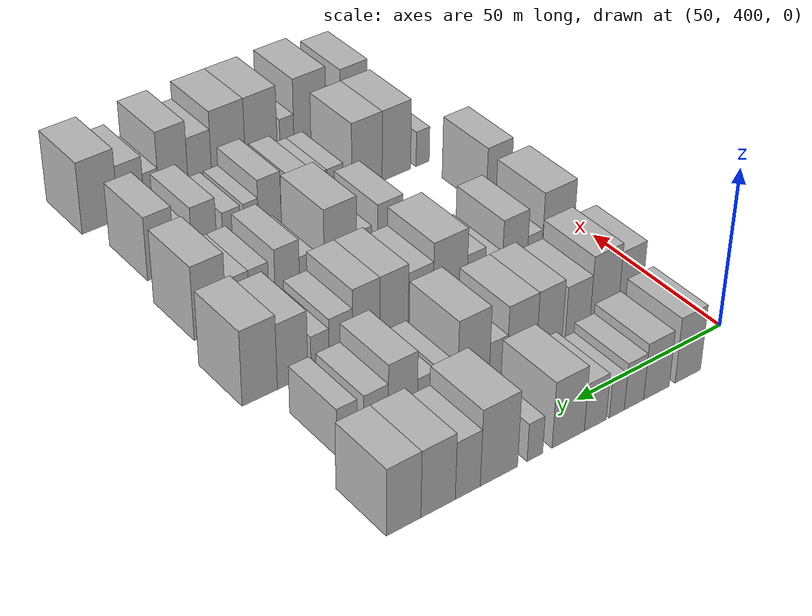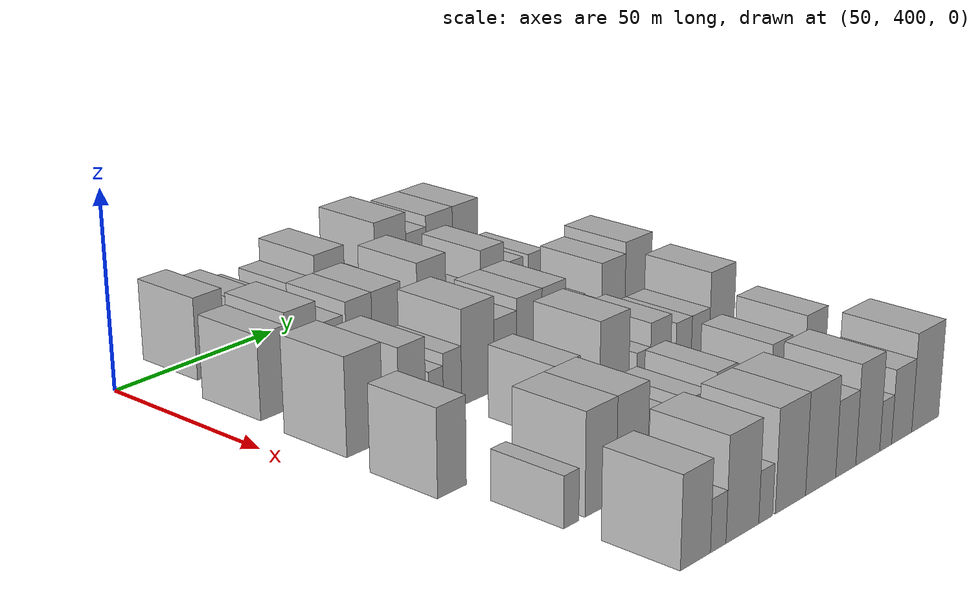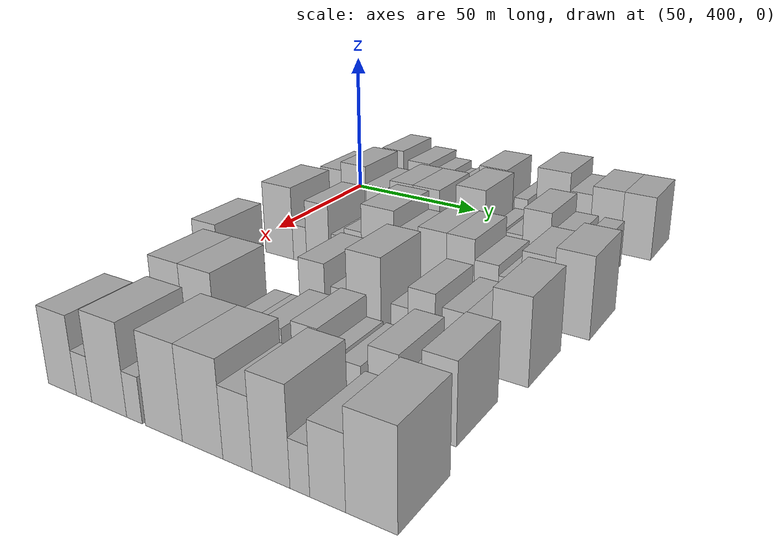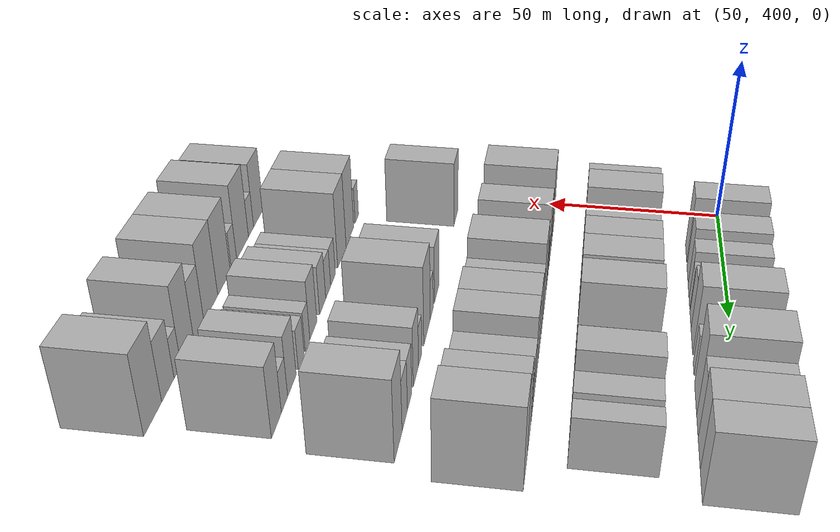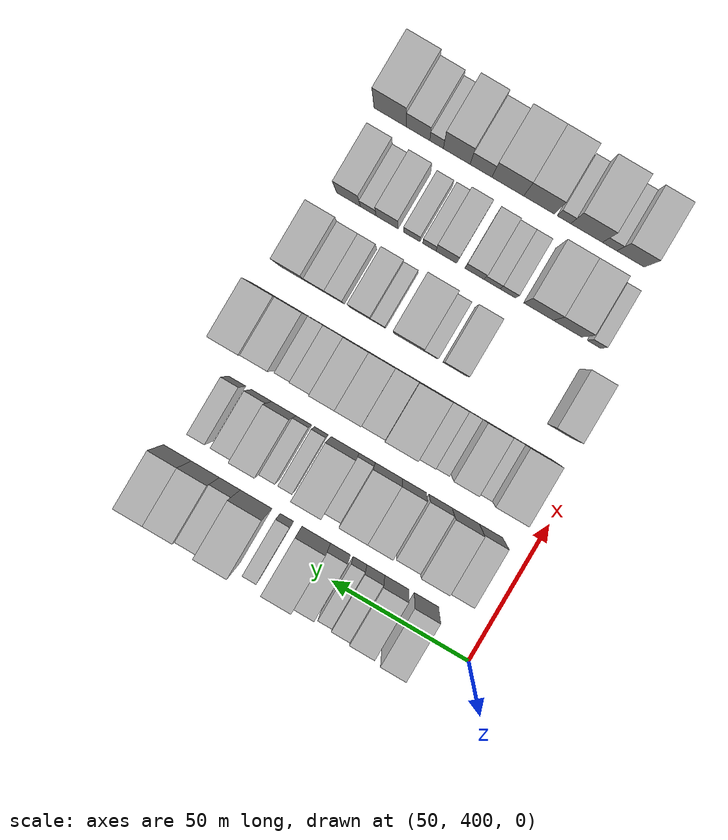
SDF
<sdf version="1.6">
 <world name="default">
  <model name="building_107">
   <static>1</static>
   <pose>50.0000 421.2466 0 0.000000 0.000000 0.000000</pose>
   <link name="link">
    <pose>0 0 10.50 0 0 0</pose>
    <collision name="collision"><geometry><box><size>20.0000 8.8748 21.0000</size></box></geometry></collision>
    <visual name="visual">
     <cast_shadows>0</cast_shadows>
     <geometry><box><size>20.0000 8.8748 21.0000</size></box></geometry>
     <material>
      <script>
       <uri>model://HANNAS_wall/materials/scripts</uri>
       <uri>model://HANNAS_wall/materials/textures</uri>
       <name>vrc/HANNAS_wall</name>
      </script>
     </material>
    </visual>
   </link>
  </model>
  <model name="building_108">
   <static>1</static>
   <pose>50.0000 432.0587 0 0.000000 0.000000 0.000000</pose>
   <link name="link">
    <pose>0 0 9.00 0 0 0</pose>
    <collision name="collision"><geometry><box><size>20.0000 8.7495 18.0000</size></box></geometry></collision>
    <visual name="visual">
     <cast_shadows>0</cast_shadows>
     <geometry><box><size>20.0000 8.7495 18.0000</size></box></geometry>
     <material>
      <script>
       <uri>model://HANNAS_wall/materials/scripts</uri>
       <uri>model://HANNAS_wall/materials/textures</uri>
       <name>vrc/HANNAS_wall</name>
      </script>
     </material>
    </visual>
   </link>
  </model>
  <model name="building_109">
   <static>1</static>
   <pose>50.0000 439.6969 0 0.000000 0.000000 0.000000</pose>
   <link name="link">
    <pose>0 0 7.50 0 0 0</pose>
    <collision name="collision"><geometry><box><size>20.0000 6.5268 15.0000</size></box></geometry></collision>
    <visual name="visual">
     <cast_shadows>0</cast_shadows>
     <geometry><box><size>20.0000 6.5268 15.0000</size></box></geometry>
     <material>
      <script>
       <uri>model://HANNAS_wall/materials/scripts</uri>
       <uri>model://HANNAS_wall/materials/textures</uri>
       <name>vrc/HANNAS_wall</name>
      </script>
     </material>
    </visual>
   </link>
  </model>
  <model name="building_110">
   <static>1</static>
   <pose>50.0000 445.4634 0 0.000000 0.000000 0.000000</pose>
   <link name="link">
    <pose>0 0 6.00 0 0 0</pose>
    <collision name="collision"><geometry><box><size>20.0000 5.0061 12.0000</size></box></geometry></collision>
    <visual name="visual">
     <cast_shadows>0</cast_shadows>
     <geometry><box><size>20.0000 5.0061 12.0000</size></box></geometry>
     <material>
      <script>
       <uri>model://HANNAS_wall/materials/scripts</uri>
       <uri>model://HANNAS_wall/materials/textures</uri>
       <name>vrc/HANNAS_wall</name>
      </script>
     </material>
    </visual>
   </link>
  </model>
  <model name="building_111">
   <static>1</static>
   <pose>50.0000 452.5818 0 0.000000 0.000000 0.000000</pose>
   <link name="link">
    <pose>0 0 7.50 0 0 0</pose>
    <collision name="collision"><geometry><box><size>20.0000 7.2307 15.0000</size></box></geometry></collision>
    <visual name="visual">
     <cast_shadows>0</cast_shadows>
     <geometry><box><size>20.0000 7.2307 15.0000</size></box></geometry>
     <material>
      <script>
       <uri>model://HANNAS_wall/materials/scripts</uri>
       <uri>model://HANNAS_wall/materials/textures</uri>
       <name>vrc/HANNAS_wall</name>
      </script>
     </material>
    </visual>
   </link>
  </model>
  <model name="building_112">
   <static>1</static>
   <pose>50.0000 461.4247 0 0.000000 0.000000 0.000000</pose>
   <link name="link">
    <pose>0 0 10.50 0 0 0</pose>
    <collision name="collision"><geometry><box><size>20.0000 10.4552 21.0000</size></box></geometry></collision>
    <visual name="visual">
     <cast_shadows>0</cast_shadows>
     <geometry><box><size>20.0000 10.4552 21.0000</size></box></geometry>
     <material>
      <script>
       <uri>model://HANNAS_wall/materials/scripts</uri>
       <uri>model://HANNAS_wall/materials/textures</uri>
       <name>vrc/HANNAS_wall</name>
      </script>
     </material>
    </visual>
   </link>
  </model>
  <model name="building_113">
   <static>1</static>
   <pose>50.0000 472.1253 0 0.000000 0.000000 0.000000</pose>
   <link name="link">
    <pose>0 0 6.00 0 0 0</pose>
    <collision name="collision"><geometry><box><size>20.0000 4.9460 12.0000</size></box></geometry></collision>
    <visual name="visual">
     <cast_shadows>0</cast_shadows>
     <geometry><box><size>20.0000 4.9460 12.0000</size></box></geometry>
     <material>
      <script>
       <uri>model://HANNAS_wall/materials/scripts</uri>
       <uri>model://HANNAS_wall/materials/textures</uri>
       <name>vrc/HANNAS_wall</name>
      </script>
     </material>
    </visual>
   </link>
  </model>
  <model name="building_114">
   <static>1</static>
   <pose>50.0000 483.3842 0 0.000000 0.000000 0.000000</pose>
   <link name="link">
    <pose>0 0 12.00 0 0 0</pose>
    <collision name="collision"><geometry><box><size>20.0000 11.5720 24.0000</size></box></geometry></collision>
    <visual name="visual">
     <cast_shadows>0</cast_shadows>
     <geometry><box><size>20.0000 11.5720 24.0000</size></box></geometry>
     <material>
      <script>
       <uri>model://HANNAS_wall/materials/scripts</uri>
       <uri>model://HANNAS_wall/materials/textures</uri>
       <name>vrc/HANNAS_wall</name>
      </script>
     </material>
    </visual>
   </link>
  </model>
  <model name="building_115">
   <static>1</static>
   <pose>50.0000 492.9844 0 0.000000 0.000000 0.000000</pose>
   <link name="link">
    <pose>0 0 9.00 0 0 0</pose>
    <collision name="collision"><geometry><box><size>20.0000 7.6282 18.0000</size></box></geometry></collision>
    <visual name="visual">
     <cast_shadows>0</cast_shadows>
     <geometry><box><size>20.0000 7.6282 18.0000</size></box></geometry>
     <material>
      <script>
       <uri>model://HANNAS_wall/materials/scripts</uri>
       <uri>model://HANNAS_wall/materials/textures</uri>
       <name>vrc/HANNAS_wall</name>
      </script>
     </material>
    </visual>
   </link>
  </model>
  <model name="building_116">
   <static>1</static>
   <pose>50.0000 501.9489 0 0.000000 0.000000 0.000000</pose>
   <link name="link">
    <pose>0 0 10.50 0 0 0</pose>
    <collision name="collision"><geometry><box><size>20.0000 10.3009 21.0000</size></box></geometry></collision>
    <visual name="visual">
     <cast_shadows>0</cast_shadows>
     <geometry><box><size>20.0000 10.3009 21.0000</size></box></geometry>
     <material>
      <script>
       <uri>model://HANNAS_wall/materials/scripts</uri>
       <uri>model://HANNAS_wall/materials/textures</uri>
       <name>vrc/HANNAS_wall</name>
      </script>
     </material>
    </visual>
   </link>
  </model>
  <model name="building_117">
   <static>1</static>
   <pose>50.0000 512.1734 0 0.000000 0.000000 0.000000</pose>
   <link name="link">
    <pose>0 0 10.50 0 0 0</pose>
    <collision name="collision"><geometry><box><size>20.0000 10.1482 21.0000</size></box></geometry></collision>
    <visual name="visual">
     <cast_shadows>0</cast_shadows>
     <geometry><box><size>20.0000 10.1482 21.0000</size></box></geometry>
     <material>
      <script>
       <uri>model://HANNAS_wall/materials/scripts</uri>
       <uri>model://HANNAS_wall/materials/textures</uri>
       <name>vrc/HANNAS_wall</name>
      </script>
     </material>
    </visual>
   </link>
  </model>
  <model name="building_219">
   <static>1</static>
   <pose>79.0000 414.7641 0 0.000000 0.000000 0.000000</pose>
   <link name="link">
    <pose>0 0 10.50 0 0 0</pose>
    <collision name="collision"><geometry><box><size>20.0000 8.4899 21.0000</size></box></geometry></collision>
    <visual name="visual">
     <cast_shadows>0</cast_shadows>
     <geometry><box><size>20.0000 8.4899 21.0000</size></box></geometry>
     <material>
      <script>
       <uri>model://HANNAS_wall/materials/scripts</uri>
       <uri>model://HANNAS_wall/materials/textures</uri>
       <name>vrc/HANNAS_wall</name>
      </script>
     </material>
    </visual>
   </link>
  </model>
  <model name="building_220">
   <static>1</static>
   <pose>79.0000 423.9705 0 0.000000 0.000000 0.000000</pose>
   <link name="link">
    <pose>0 0 12.00 0 0 0</pose>
    <collision name="collision"><geometry><box><size>20.0000 9.9229 24.0000</size></box></geometry></collision>
    <visual name="visual">
     <cast_shadows>0</cast_shadows>
     <geometry><box><size>20.0000 9.9229 24.0000</size></box></geometry>
     <material>
      <script>
       <uri>model://HANNAS_wall/materials/scripts</uri>
       <uri>model://HANNAS_wall/materials/textures</uri>
       <name>vrc/HANNAS_wall</name>
      </script>
     </material>
    </visual>
   </link>
  </model>
  <model name="building_221">
   <static>1</static>
   <pose>79.0000 433.1678 0 0.000000 0.000000 0.000000</pose>
   <link name="link">
    <pose>0 0 9.00 0 0 0</pose>
    <collision name="collision"><geometry><box><size>20.0000 8.4718 18.0000</size></box></geometry></collision>
    <visual name="visual">
     <cast_shadows>0</cast_shadows>
     <geometry><box><size>20.0000 8.4718 18.0000</size></box></geometry>
     <material>
      <script>
       <uri>model://HANNAS_wall/materials/scripts</uri>
       <uri>model://HANNAS_wall/materials/textures</uri>
       <name>vrc/HANNAS_wall</name>
      </script>
     </material>
    </visual>
   </link>
  </model>
  <model name="building_222">
   <static>1</static>
   <pose>79.0000 442.7608 0 0.000000 0.000000 0.000000</pose>
   <link name="link">
    <pose>0 0 10.50 0 0 0</pose>
    <collision name="collision"><geometry><box><size>20.0000 8.7142 21.0000</size></box></geometry></collision>
    <visual name="visual">
     <cast_shadows>0</cast_shadows>
     <geometry><box><size>20.0000 8.7142 21.0000</size></box></geometry>
     <material>
      <script>
       <uri>model://HANNAS_wall/materials/scripts</uri>
       <uri>model://HANNAS_wall/materials/textures</uri>
       <name>vrc/HANNAS_wall</name>
      </script>
     </material>
    </visual>
   </link>
  </model>
  <model name="building_223">
   <static>1</static>
   <pose>79.0000 452.0657 0 0.000000 0.000000 0.000000</pose>
   <link name="link">
    <pose>0 0 10.50 0 0 0</pose>
    <collision name="collision"><geometry><box><size>20.0000 9.8955 21.0000</size></box></geometry></collision>
    <visual name="visual">
     <cast_shadows>0</cast_shadows>
     <geometry><box><size>20.0000 9.8955 21.0000</size></box></geometry>
     <material>
      <script>
       <uri>model://HANNAS_wall/materials/scripts</uri>
       <uri>model://HANNAS_wall/materials/textures</uri>
       <name>vrc/HANNAS_wall</name>
      </script>
     </material>
    </visual>
   </link>
  </model>
  <model name="building_224">
   <static>1</static>
   <pose>79.0000 459.9081 0 0.000000 0.000000 0.000000</pose>
   <link name="link">
    <pose>0 0 6.00 0 0 0</pose>
    <collision name="collision"><geometry><box><size>20.0000 5.7894 12.0000</size></box></geometry></collision>
    <visual name="visual">
     <cast_shadows>0</cast_shadows>
     <geometry><box><size>20.0000 5.7894 12.0000</size></box></geometry>
     <material>
      <script>
       <uri>model://HANNAS_wall/materials/scripts</uri>
       <uri>model://HANNAS_wall/materials/textures</uri>
       <name>vrc/HANNAS_wall</name>
      </script>
     </material>
    </visual>
   </link>
  </model>
  <model name="building_225">
   <static>1</static>
   <pose>79.0000 467.9685 0 0.000000 0.000000 0.000000</pose>
   <link name="link">
    <pose>0 0 12.00 0 0 0</pose>
    <collision name="collision"><geometry><box><size>20.0000 10.3315 24.0000</size></box></geometry></collision>
    <visual name="visual">
     <cast_shadows>0</cast_shadows>
     <geometry><box><size>20.0000 10.3315 24.0000</size></box></geometry>
     <material>
      <script>
       <uri>model://HANNAS_wall/materials/scripts</uri>
       <uri>model://HANNAS_wall/materials/textures</uri>
       <name>vrc/HANNAS_wall</name>
      </script>
     </material>
    </visual>
   </link>
  </model>
  <model name="building_226">
   <static>1</static>
   <pose>79.0000 476.6494 0 0.000000 0.000000 0.000000</pose>
   <link name="link">
    <pose>0 0 6.00 0 0 0</pose>
    <collision name="collision"><geometry><box><size>20.0000 5.0301 12.0000</size></box></geometry></collision>
    <visual name="visual">
     <cast_shadows>0</cast_shadows>
     <geometry><box><size>20.0000 5.0301 12.0000</size></box></geometry>
     <material>
      <script>
       <uri>model://HANNAS_wall/materials/scripts</uri>
       <uri>model://HANNAS_wall/materials/textures</uri>
       <name>vrc/HANNAS_wall</name>
      </script>
     </material>
    </visual>
   </link>
  </model>
  <model name="building_227">
   <static>1</static>
   <pose>79.0000 483.0104 0 0.000000 0.000000 0.000000</pose>
   <link name="link">
    <pose>0 0 6.00 0 0 0</pose>
    <collision name="collision"><geometry><box><size>20.0000 5.6918 12.0000</size></box></geometry></collision>
    <visual name="visual">
     <cast_shadows>0</cast_shadows>
     <geometry><box><size>20.0000 5.6918 12.0000</size></box></geometry>
     <material>
      <script>
       <uri>model://HANNAS_wall/materials/scripts</uri>
       <uri>model://HANNAS_wall/materials/textures</uri>
       <name>vrc/HANNAS_wall</name>
      </script>
     </material>
    </visual>
   </link>
  </model>
  <model name="building_228">
   <static>1</static>
   <pose>79.0000 490.3466 0 0.000000 0.000000 0.000000</pose>
   <link name="link">
    <pose>0 0 10.50 0 0 0</pose>
    <collision name="collision"><geometry><box><size>20.0000 8.9806 21.0000</size></box></geometry></collision>
    <visual name="visual">
     <cast_shadows>0</cast_shadows>
     <geometry><box><size>20.0000 8.9806 21.0000</size></box></geometry>
     <material>
      <script>
       <uri>model://HANNAS_wall/materials/scripts</uri>
       <uri>model://HANNAS_wall/materials/textures</uri>
       <name>vrc/HANNAS_wall</name>
      </script>
     </material>
    </visual>
   </link>
  </model>
  <model name="building_229">
   <static>1</static>
   <pose>79.0000 498.5619 0 0.000000 0.000000 0.000000</pose>
   <link name="link">
    <pose>0 0 7.50 0 0 0</pose>
    <collision name="collision"><geometry><box><size>20.0000 7.4499 15.0000</size></box></geometry></collision>
    <visual name="visual">
     <cast_shadows>0</cast_shadows>
     <geometry><box><size>20.0000 7.4499 15.0000</size></box></geometry>
     <material>
      <script>
       <uri>model://HANNAS_wall/materials/scripts</uri>
       <uri>model://HANNAS_wall/materials/textures</uri>
       <name>vrc/HANNAS_wall</name>
      </script>
     </material>
    </visual>
   </link>
  </model>
  <model name="building_230">
   <static>1</static>
   <pose>79.0000 507.3878 0 0.000000 0.000000 0.000000</pose>
   <link name="link">
    <pose>0 0 7.50 0 0 0</pose>
    <collision name="collision"><geometry><box><size>20.0000 6.2020 15.0000</size></box></geometry></collision>
    <visual name="visual">
     <cast_shadows>0</cast_shadows>
     <geometry><box><size>20.0000 6.2020 15.0000</size></box></geometry>
     <material>
      <script>
       <uri>model://HANNAS_wall/materials/scripts</uri>
       <uri>model://HANNAS_wall/materials/textures</uri>
       <name>vrc/HANNAS_wall</name>
      </script>
     </material>
    </visual>
   </link>
  </model>
  <model name="building_336">
   <static>1</static>
   <pose>108.0000 415.0740 0 0.000000 0.000000 0.000000</pose>
   <link name="link">
    <pose>0 0 12.00 0 0 0</pose>
    <collision name="collision"><geometry><box><size>20.0000 11.3587 24.0000</size></box></geometry></collision>
    <visual name="visual">
     <cast_shadows>0</cast_shadows>
     <geometry><box><size>20.0000 11.3587 24.0000</size></box></geometry>
     <material>
      <script>
       <uri>model://HANNAS_wall/materials/scripts</uri>
       <uri>model://HANNAS_wall/materials/textures</uri>
       <name>vrc/HANNAS_wall</name>
      </script>
     </material>
    </visual>
   </link>
  </model>
  <model name="building_337">
   <static>1</static>
   <pose>108.0000 423.3694 0 0.000000 0.000000 0.000000</pose>
   <link name="link">
    <pose>0 0 6.00 0 0 0</pose>
    <collision name="collision"><geometry><box><size>20.0000 5.2320 12.0000</size></box></geometry></collision>
    <visual name="visual">
     <cast_shadows>0</cast_shadows>
     <geometry><box><size>20.0000 5.2320 12.0000</size></box></geometry>
     <material>
      <script>
       <uri>model://HANNAS_wall/materials/scripts</uri>
       <uri>model://HANNAS_wall/materials/textures</uri>
       <name>vrc/HANNAS_wall</name>
      </script>
     </material>
    </visual>
   </link>
  </model>
  <model name="building_338">
   <static>1</static>
   <pose>108.0000 430.3814 0 0.000000 0.000000 0.000000</pose>
   <link name="link">
    <pose>0 0 10.50 0 0 0</pose>
    <collision name="collision"><geometry><box><size>20.0000 8.7921 21.0000</size></box></geometry></collision>
    <visual name="visual">
     <cast_shadows>0</cast_shadows>
     <geometry><box><size>20.0000 8.7921 21.0000</size></box></geometry>
     <material>
      <script>
       <uri>model://HANNAS_wall/materials/scripts</uri>
       <uri>model://HANNAS_wall/materials/textures</uri>
       <name>vrc/HANNAS_wall</name>
      </script>
     </material>
    </visual>
   </link>
  </model>
  <model name="building_339">
   <static>1</static>
   <pose>108.0000 438.2281 0 0.000000 0.000000 0.000000</pose>
   <link name="link">
    <pose>0 0 6.00 0 0 0</pose>
    <collision name="collision"><geometry><box><size>20.0000 4.9012 12.0000</size></box></geometry></collision>
    <visual name="visual">
     <cast_shadows>0</cast_shadows>
     <geometry><box><size>20.0000 4.9012 12.0000</size></box></geometry>
     <material>
      <script>
       <uri>model://HANNAS_wall/materials/scripts</uri>
       <uri>model://HANNAS_wall/materials/textures</uri>
       <name>vrc/HANNAS_wall</name>
      </script>
     </material>
    </visual>
   </link>
  </model>
  <model name="building_340">
   <static>1</static>
   <pose>108.0000 443.7840 0 0.000000 0.000000 0.000000</pose>
   <link name="link">
    <pose>0 0 7.50 0 0 0</pose>
    <collision name="collision"><geometry><box><size>20.0000 6.2108 15.0000</size></box></geometry></collision>
    <visual name="visual">
     <cast_shadows>0</cast_shadows>
     <geometry><box><size>20.0000 6.2108 15.0000</size></box></geometry>
     <material>
      <script>
       <uri>model://HANNAS_wall/materials/scripts</uri>
       <uri>model://HANNAS_wall/materials/textures</uri>
       <name>vrc/HANNAS_wall</name>
      </script>
     </material>
    </visual>
   </link>
  </model>
  <model name="building_341">
   <static>1</static>
   <pose>108.0000 452.5724 0 0.000000 0.000000 0.000000</pose>
   <link name="link">
    <pose>0 0 12.00 0 0 0</pose>
    <collision name="collision"><geometry><box><size>20.0000 11.3658 24.0000</size></box></geometry></collision>
    <visual name="visual">
     <cast_shadows>0</cast_shadows>
     <geometry><box><size>20.0000 11.3658 24.0000</size></box></geometry>
     <material>
      <script>
       <uri>model://HANNAS_wall/materials/scripts</uri>
       <uri>model://HANNAS_wall/materials/textures</uri>
       <name>vrc/HANNAS_wall</name>
      </script>
     </material>
    </visual>
   </link>
  </model>
  <model name="building_342">
   <static>1</static>
   <pose>108.0000 462.3504 0 0.000000 0.000000 0.000000</pose>
   <link name="link">
    <pose>0 0 9.00 0 0 0</pose>
    <collision name="collision"><geometry><box><size>20.0000 8.1902 18.0000</size></box></geometry></collision>
    <visual name="visual">
     <cast_shadows>0</cast_shadows>
     <geometry><box><size>20.0000 8.1902 18.0000</size></box></geometry>
     <material>
      <script>
       <uri>model://HANNAS_wall/materials/scripts</uri>
       <uri>model://HANNAS_wall/materials/textures</uri>
       <name>vrc/HANNAS_wall</name>
      </script>
     </material>
    </visual>
   </link>
  </model>
  <model name="building_343">
   <static>1</static>
   <pose>108.0000 471.0716 0 0.000000 0.000000 0.000000</pose>
   <link name="link">
    <pose>0 0 10.50 0 0 0</pose>
    <collision name="collision"><geometry><box><size>20.0000 9.2522 21.0000</size></box></geometry></collision>
    <visual name="visual">
     <cast_shadows>0</cast_shadows>
     <geometry><box><size>20.0000 9.2522 21.0000</size></box></geometry>
     <material>
      <script>
       <uri>model://HANNAS_wall/materials/scripts</uri>
       <uri>model://HANNAS_wall/materials/textures</uri>
       <name>vrc/HANNAS_wall</name>
      </script>
     </material>
    </visual>
   </link>
  </model>
  <model name="building_344">
   <static>1</static>
   <pose>108.0000 480.1071 0 0.000000 0.000000 0.000000</pose>
   <link name="link">
    <pose>0 0 10.50 0 0 0</pose>
    <collision name="collision"><geometry><box><size>20.0000 8.8187 21.0000</size></box></geometry></collision>
    <visual name="visual">
     <cast_shadows>0</cast_shadows>
     <geometry><box><size>20.0000 8.8187 21.0000</size></box></geometry>
     <material>
      <script>
       <uri>model://HANNAS_wall/materials/scripts</uri>
       <uri>model://HANNAS_wall/materials/textures</uri>
       <name>vrc/HANNAS_wall</name>
      </script>
     </material>
    </visual>
   </link>
  </model>
  <model name="building_345">
   <static>1</static>
   <pose>108.0000 488.2163 0 0.000000 0.000000 0.000000</pose>
   <link name="link">
    <pose>0 0 7.50 0 0 0</pose>
    <collision name="collision"><geometry><box><size>20.0000 7.3998 15.0000</size></box></geometry></collision>
    <visual name="visual">
     <cast_shadows>0</cast_shadows>
     <geometry><box><size>20.0000 7.3998 15.0000</size></box></geometry>
     <material>
      <script>
       <uri>model://HANNAS_wall/materials/scripts</uri>
       <uri>model://HANNAS_wall/materials/textures</uri>
       <name>vrc/HANNAS_wall</name>
      </script>
     </material>
    </visual>
   </link>
  </model>
  <model name="building_346">
   <static>1</static>
   <pose>108.0000 494.7376 0 0.000000 0.000000 0.000000</pose>
   <link name="link">
    <pose>0 0 6.00 0 0 0</pose>
    <collision name="collision"><geometry><box><size>20.0000 5.6429 12.0000</size></box></geometry></collision>
    <visual name="visual">
     <cast_shadows>0</cast_shadows>
     <geometry><box><size>20.0000 5.6429 12.0000</size></box></geometry>
     <material>
      <script>
       <uri>model://HANNAS_wall/materials/scripts</uri>
       <uri>model://HANNAS_wall/materials/textures</uri>
       <name>vrc/HANNAS_wall</name>
      </script>
     </material>
    </visual>
   </link>
  </model>
  <model name="building_347">
   <static>1</static>
   <pose>108.0000 503.2776 0 0.000000 0.000000 0.000000</pose>
   <link name="link">
    <pose>0 0 10.50 0 0 0</pose>
    <collision name="collision"><geometry><box><size>20.0000 9.4370 21.0000</size></box></geometry></collision>
    <visual name="visual">
     <cast_shadows>0</cast_shadows>
     <geometry><box><size>20.0000 9.4370 21.0000</size></box></geometry>
     <material>
      <script>
       <uri>model://HANNAS_wall/materials/scripts</uri>
       <uri>model://HANNAS_wall/materials/textures</uri>
       <name>vrc/HANNAS_wall</name>
      </script>
     </material>
    </visual>
   </link>
  </model>
  <model name="building_348">
   <static>1</static>
   <pose>108.0000 513.3404 0 0.000000 0.000000 0.000000</pose>
   <link name="link">
    <pose>0 0 12.00 0 0 0</pose>
    <collision name="collision"><geometry><box><size>20.0000 10.6885 24.0000</size></box></geometry></collision>
    <visual name="visual">
     <cast_shadows>0</cast_shadows>
     <geometry><box><size>20.0000 10.6885 24.0000</size></box></geometry>
     <material>
      <script>
       <uri>model://HANNAS_wall/materials/scripts</uri>
       <uri>model://HANNAS_wall/materials/textures</uri>
       <name>vrc/HANNAS_wall</name>
      </script>
     </material>
    </visual>
   </link>
  </model>
  <model name="building_450">
   <static>1</static>
   <pose>137.0000 412.0111 0 0.000000 0.000000 0.000000</pose>
   <link name="link">
    <pose>0 0 10.50 0 0 0</pose>
    <collision name="collision"><geometry><box><size>20.0000 9.0703 21.0000</size></box></geometry></collision>
    <visual name="visual">
     <cast_shadows>0</cast_shadows>
     <geometry><box><size>20.0000 9.0703 21.0000</size></box></geometry>
     <material>
      <script>
       <uri>model://HANNAS_wall/materials/scripts</uri>
       <uri>model://HANNAS_wall/materials/textures</uri>
       <name>vrc/HANNAS_wall</name>
      </script>
     </material>
    </visual>
   </link>
  </model>
  <model name="building_451">
   <static>1</static>
   <pose>137.0000 450.4478 0 0.000000 0.000000 0.000000</pose>
   <link name="link">
    <pose>0 0 9.00 0 0 0</pose>
    <collision name="collision"><geometry><box><size>20.0000 8.6010 18.0000</size></box></geometry></collision>
    <visual name="visual">
     <cast_shadows>0</cast_shadows>
     <geometry><box><size>20.0000 8.6010 18.0000</size></box></geometry>
     <material>
      <script>
       <uri>model://HANNAS_wall/materials/scripts</uri>
       <uri>model://HANNAS_wall/materials/textures</uri>
       <name>vrc/HANNAS_wall</name>
      </script>
     </material>
    </visual>
   </link>
  </model>
  <model name="building_452">
   <static>1</static>
   <pose>137.0000 459.3145 0 0.000000 0.000000 0.000000</pose>
   <link name="link">
    <pose>0 0 6.00 0 0 0</pose>
    <collision name="collision"><geometry><box><size>20.0000 5.1324 12.0000</size></box></geometry></collision>
    <visual name="visual">
     <cast_shadows>0</cast_shadows>
     <geometry><box><size>20.0000 5.1324 12.0000</size></box></geometry>
     <material>
      <script>
       <uri>model://HANNAS_wall/materials/scripts</uri>
       <uri>model://HANNAS_wall/materials/textures</uri>
       <name>vrc/HANNAS_wall</name>
      </script>
     </material>
    </visual>
   </link>
  </model>
  <model name="building_453">
   <static>1</static>
   <pose>137.0000 467.2673 0 0.000000 0.000000 0.000000</pose>
   <link name="link">
    <pose>0 0 12.00 0 0 0</pose>
    <collision name="collision"><geometry><box><size>20.0000 10.7732 24.0000</size></box></geometry></collision>
    <visual name="visual">
     <cast_shadows>0</cast_shadows>
     <geometry><box><size>20.0000 10.7732 24.0000</size></box></geometry>
     <material>
      <script>
       <uri>model://HANNAS_wall/materials/scripts</uri>
       <uri>model://HANNAS_wall/materials/textures</uri>
       <name>vrc/HANNAS_wall</name>
      </script>
     </material>
    </visual>
   </link>
  </model>
  <model name="building_454">
   <static>1</static>
   <pose>137.0000 478.2167 0 0.000000 0.000000 0.000000</pose>
   <link name="link">
    <pose>0 0 6.00 0 0 0</pose>
    <collision name="collision"><geometry><box><size>20.0000 5.1255 12.0000</size></box></geometry></collision>
    <visual name="visual">
     <cast_shadows>0</cast_shadows>
     <geometry><box><size>20.0000 5.1255 12.0000</size></box></geometry>
     <material>
      <script>
       <uri>model://HANNAS_wall/materials/scripts</uri>
       <uri>model://HANNAS_wall/materials/textures</uri>
       <name>vrc/HANNAS_wall</name>
      </script>
     </material>
    </visual>
   </link>
  </model>
  <model name="building_455">
   <static>1</static>
   <pose>137.0000 484.7284 0 0.000000 0.000000 0.000000</pose>
   <link name="link">
    <pose>0 0 9.00 0 0 0</pose>
    <collision name="collision"><geometry><box><size>20.0000 7.8979 18.0000</size></box></geometry></collision>
    <visual name="visual">
     <cast_shadows>0</cast_shadows>
     <geometry><box><size>20.0000 7.8979 18.0000</size></box></geometry>
     <material>
      <script>
       <uri>model://HANNAS_wall/materials/scripts</uri>
       <uri>model://HANNAS_wall/materials/textures</uri>
       <name>vrc/HANNAS_wall</name>
      </script>
     </material>
    </visual>
   </link>
  </model>
  <model name="building_456">
   <static>1</static>
   <pose>137.0000 493.7923 0 0.000000 0.000000 0.000000</pose>
   <link name="link">
    <pose>0 0 7.50 0 0 0</pose>
    <collision name="collision"><geometry><box><size>20.0000 6.2299 15.0000</size></box></geometry></collision>
    <visual name="visual">
     <cast_shadows>0</cast_shadows>
     <geometry><box><size>20.0000 6.2299 15.0000</size></box></geometry>
     <material>
      <script>
       <uri>model://HANNAS_wall/materials/scripts</uri>
       <uri>model://HANNAS_wall/materials/textures</uri>
       <name>vrc/HANNAS_wall</name>
      </script>
     </material>
    </visual>
   </link>
  </model>
  <model name="building_457">
   <static>1</static>
   <pose>137.0000 500.5406 0 0.000000 0.000000 0.000000</pose>
   <link name="link">
    <pose>0 0 7.50 0 0 0</pose>
    <collision name="collision"><geometry><box><size>20.0000 7.2668 15.0000</size></box></geometry></collision>
    <visual name="visual">
     <cast_shadows>0</cast_shadows>
     <geometry><box><size>20.0000 7.2668 15.0000</size></box></geometry>
     <material>
      <script>
       <uri>model://HANNAS_wall/materials/scripts</uri>
       <uri>model://HANNAS_wall/materials/textures</uri>
       <name>vrc/HANNAS_wall</name>
      </script>
     </material>
    </visual>
   </link>
  </model>
  <model name="building_458">
   <static>1</static>
   <pose>137.0000 509.2249 0 0.000000 0.000000 0.000000</pose>
   <link name="link">
    <pose>0 0 12.00 0 0 0</pose>
    <collision name="collision"><geometry><box><size>20.0000 10.1018 24.0000</size></box></geometry></collision>
    <visual name="visual">
     <cast_shadows>0</cast_shadows>
     <geometry><box><size>20.0000 10.1018 24.0000</size></box></geometry>
     <material>
      <script>
       <uri>model://HANNAS_wall/materials/scripts</uri>
       <uri>model://HANNAS_wall/materials/textures</uri>
       <name>vrc/HANNAS_wall</name>
      </script>
     </material>
    </visual>
   </link>
  </model>
  <model name="building_559">
   <static>1</static>
   <pose>166.0000 416.6930 0 0.000000 0.000000 0.000000</pose>
   <link name="link">
    <pose>0 0 6.00 0 0 0</pose>
    <collision name="collision"><geometry><box><size>20.0000 4.8756 12.0000</size></box></geometry></collision>
    <visual name="visual">
     <cast_shadows>0</cast_shadows>
     <geometry><box><size>20.0000 4.8756 12.0000</size></box></geometry>
     <material>
      <script>
       <uri>model://HANNAS_wall/materials/scripts</uri>
       <uri>model://HANNAS_wall/materials/textures</uri>
       <name>vrc/HANNAS_wall</name>
      </script>
     </material>
    </visual>
   </link>
  </model>
  <model name="building_560">
   <static>1</static>
   <pose>166.0000 426.3184 0 0.000000 0.000000 0.000000</pose>
   <link name="link">
    <pose>0 0 12.00 0 0 0</pose>
    <collision name="collision"><geometry><box><size>20.0000 10.3752 24.0000</size></box></geometry></collision>
    <visual name="visual">
     <cast_shadows>0</cast_shadows>
     <geometry><box><size>20.0000 10.3752 24.0000</size></box></geometry>
     <material>
      <script>
       <uri>model://HANNAS_wall/materials/scripts</uri>
       <uri>model://HANNAS_wall/materials/textures</uri>
       <name>vrc/HANNAS_wall</name>
      </script>
     </material>
    </visual>
   </link>
  </model>
  <model name="building_561">
   <static>1</static>
   <pose>166.0000 436.9095 0 0.000000 0.000000 0.000000</pose>
   <link name="link">
    <pose>0 0 12.00 0 0 0</pose>
    <collision name="collision"><geometry><box><size>20.0000 10.8070 24.0000</size></box></geometry></collision>
    <visual name="visual">
     <cast_shadows>0</cast_shadows>
     <geometry><box><size>20.0000 10.8070 24.0000</size></box></geometry>
     <material>
      <script>
       <uri>model://HANNAS_wall/materials/scripts</uri>
       <uri>model://HANNAS_wall/materials/textures</uri>
       <name>vrc/HANNAS_wall</name>
      </script>
     </material>
    </visual>
   </link>
  </model>
  <model name="building_562">
   <static>1</static>
   <pose>166.0000 448.1344 0 0.000000 0.000000 0.000000</pose>
   <link name="link">
    <pose>0 0 6.00 0 0 0</pose>
    <collision name="collision"><geometry><box><size>20.0000 5.6428 12.0000</size></box></geometry></collision>
    <visual name="visual">
     <cast_shadows>0</cast_shadows>
     <geometry><box><size>20.0000 5.6428 12.0000</size></box></geometry>
     <material>
      <script>
       <uri>model://HANNAS_wall/materials/scripts</uri>
       <uri>model://HANNAS_wall/materials/textures</uri>
       <name>vrc/HANNAS_wall</name>
      </script>
     </material>
    </visual>
   </link>
  </model>
  <model name="building_563">
   <static>1</static>
   <pose>166.0000 453.8612 0 0.000000 0.000000 0.000000</pose>
   <link name="link">
    <pose>0 0 6.00 0 0 0</pose>
    <collision name="collision"><geometry><box><size>20.0000 5.8106 12.0000</size></box></geometry></collision>
    <visual name="visual">
     <cast_shadows>0</cast_shadows>
     <geometry><box><size>20.0000 5.8106 12.0000</size></box></geometry>
     <material>
      <script>
       <uri>model://HANNAS_wall/materials/scripts</uri>
       <uri>model://HANNAS_wall/materials/textures</uri>
       <name>vrc/HANNAS_wall</name>
      </script>
     </material>
    </visual>
   </link>
  </model>
  <model name="building_564">
   <static>1</static>
   <pose>166.0000 460.2765 0 0.000000 0.000000 0.000000</pose>
   <link name="link">
    <pose>0 0 7.50 0 0 0</pose>
    <collision name="collision"><geometry><box><size>20.0000 7.0200 15.0000</size></box></geometry></collision>
    <visual name="visual">
     <cast_shadows>0</cast_shadows>
     <geometry><box><size>20.0000 7.0200 15.0000</size></box></geometry>
     <material>
      <script>
       <uri>model://HANNAS_wall/materials/scripts</uri>
       <uri>model://HANNAS_wall/materials/textures</uri>
       <name>vrc/HANNAS_wall</name>
      </script>
     </material>
    </visual>
   </link>
  </model>
  <model name="building_565">
   <static>1</static>
   <pose>166.0000 470.5707 0 0.000000 0.000000 0.000000</pose>
   <link name="link">
    <pose>0 0 9.00 0 0 0</pose>
    <collision name="collision"><geometry><box><size>20.0000 7.5684 18.0000</size></box></geometry></collision>
    <visual name="visual">
     <cast_shadows>0</cast_shadows>
     <geometry><box><size>20.0000 7.5684 18.0000</size></box></geometry>
     <material>
      <script>
       <uri>model://HANNAS_wall/materials/scripts</uri>
       <uri>model://HANNAS_wall/materials/textures</uri>
       <name>vrc/HANNAS_wall</name>
      </script>
     </material>
    </visual>
   </link>
  </model>
  <model name="building_566">
   <static>1</static>
   <pose>166.0000 476.7823 0 0.000000 0.000000 0.000000</pose>
   <link name="link">
    <pose>0 0 6.00 0 0 0</pose>
    <collision name="collision"><geometry><box><size>20.0000 4.8548 12.0000</size></box></geometry></collision>
    <visual name="visual">
     <cast_shadows>0</cast_shadows>
     <geometry><box><size>20.0000 4.8548 12.0000</size></box></geometry>
     <material>
      <script>
       <uri>model://HANNAS_wall/materials/scripts</uri>
       <uri>model://HANNAS_wall/materials/textures</uri>
       <name>vrc/HANNAS_wall</name>
      </script>
     </material>
    </visual>
   </link>
  </model>
  <model name="building_567">
   <static>1</static>
   <pose>166.0000 483.2008 0 0.000000 0.000000 0.000000</pose>
   <link name="link">
    <pose>0 0 6.00 0 0 0</pose>
    <collision name="collision"><geometry><box><size>20.0000 5.9822 12.0000</size></box></geometry></collision>
    <visual name="visual">
     <cast_shadows>0</cast_shadows>
     <geometry><box><size>20.0000 5.9822 12.0000</size></box></geometry>
     <material>
      <script>
       <uri>model://HANNAS_wall/materials/scripts</uri>
       <uri>model://HANNAS_wall/materials/textures</uri>
       <name>vrc/HANNAS_wall</name>
      </script>
     </material>
    </visual>
   </link>
  </model>
  <model name="building_568">
   <static>1</static>
   <pose>166.0000 492.2034 0 0.000000 0.000000 0.000000</pose>
   <link name="link">
    <pose>0 0 9.00 0 0 0</pose>
    <collision name="collision"><geometry><box><size>20.0000 8.0229 18.0000</size></box></geometry></collision>
    <visual name="visual">
     <cast_shadows>0</cast_shadows>
     <geometry><box><size>20.0000 8.0229 18.0000</size></box></geometry>
     <material>
      <script>
       <uri>model://HANNAS_wall/materials/scripts</uri>
       <uri>model://HANNAS_wall/materials/textures</uri>
       <name>vrc/HANNAS_wall</name>
      </script>
     </material>
    </visual>
   </link>
  </model>
  <model name="building_569">
   <static>1</static>
   <pose>166.0000 499.0769 0 0.000000 0.000000 0.000000</pose>
   <link name="link">
    <pose>0 0 6.00 0 0 0</pose>
    <collision name="collision"><geometry><box><size>20.0000 5.7241 12.0000</size></box></geometry></collision>
    <visual name="visual">
     <cast_shadows>0</cast_shadows>
     <geometry><box><size>20.0000 5.7241 12.0000</size></box></geometry>
     <material>
      <script>
       <uri>model://HANNAS_wall/materials/scripts</uri>
       <uri>model://HANNAS_wall/materials/textures</uri>
       <name>vrc/HANNAS_wall</name>
      </script>
     </material>
    </visual>
   </link>
  </model>
  <model name="building_570">
   <static>1</static>
   <pose>166.0000 506.2732 0 0.000000 0.000000 0.000000</pose>
   <link name="link">
    <pose>0 0 10.50 0 0 0</pose>
    <collision name="collision"><geometry><box><size>20.0000 8.6686 21.0000</size></box></geometry></collision>
    <visual name="visual">
     <cast_shadows>0</cast_shadows>
     <geometry><box><size>20.0000 8.6686 21.0000</size></box></geometry>
     <material>
      <script>
       <uri>model://HANNAS_wall/materials/scripts</uri>
       <uri>model://HANNAS_wall/materials/textures</uri>
       <name>vrc/HANNAS_wall</name>
      </script>
     </material>
    </visual>
   </link>
  </model>
  <model name="building_674">
   <static>1</static>
   <pose>195.0000 420.3270 0 0.000000 0.000000 0.000000</pose>
   <link name="link">
    <pose>0 0 10.50 0 0 0</pose>
    <collision name="collision"><geometry><box><size>20.0000 10.0228 21.0000</size></box></geometry></collision>
    <visual name="visual">
     <cast_shadows>0</cast_shadows>
     <geometry><box><size>20.0000 10.0228 21.0000</size></box></geometry>
     <material>
      <script>
       <uri>model://HANNAS_wall/materials/scripts</uri>
       <uri>model://HANNAS_wall/materials/textures</uri>
       <name>vrc/HANNAS_wall</name>
      </script>
     </material>
    </visual>
   </link>
  </model>
  <model name="building_675">
   <static>1</static>
   <pose>195.0000 427.9847 0 0.000000 0.000000 0.000000</pose>
   <link name="link">
    <pose>0 0 6.00 0 0 0</pose>
    <collision name="collision"><geometry><box><size>20.0000 5.2927 12.0000</size></box></geometry></collision>
    <visual name="visual">
     <cast_shadows>0</cast_shadows>
     <geometry><box><size>20.0000 5.2927 12.0000</size></box></geometry>
     <material>
      <script>
       <uri>model://HANNAS_wall/materials/scripts</uri>
       <uri>model://HANNAS_wall/materials/textures</uri>
       <name>vrc/HANNAS_wall</name>
      </script>
     </material>
    </visual>
   </link>
  </model>
  <model name="building_676">
   <static>1</static>
   <pose>195.0000 436.4047 0 0.000000 0.000000 0.000000</pose>
   <link name="link">
    <pose>0 0 12.00 0 0 0</pose>
    <collision name="collision"><geometry><box><size>20.0000 11.5473 24.0000</size></box></geometry></collision>
    <visual name="visual">
     <cast_shadows>0</cast_shadows>
     <geometry><box><size>20.0000 11.5473 24.0000</size></box></geometry>
     <material>
      <script>
       <uri>model://HANNAS_wall/materials/scripts</uri>
       <uri>model://HANNAS_wall/materials/textures</uri>
       <name>vrc/HANNAS_wall</name>
      </script>
     </material>
    </visual>
   </link>
  </model>
  <model name="building_677">
   <static>1</static>
   <pose>195.0000 444.6664 0 0.000000 0.000000 0.000000</pose>
   <link name="link">
    <pose>0 0 6.00 0 0 0</pose>
    <collision name="collision"><geometry><box><size>20.0000 4.9760 12.0000</size></box></geometry></collision>
    <visual name="visual">
     <cast_shadows>0</cast_shadows>
     <geometry><box><size>20.0000 4.9760 12.0000</size></box></geometry>
     <material>
      <script>
       <uri>model://HANNAS_wall/materials/scripts</uri>
       <uri>model://HANNAS_wall/materials/textures</uri>
       <name>vrc/HANNAS_wall</name>
      </script>
     </material>
    </visual>
   </link>
  </model>
  <model name="building_678">
   <static>1</static>
   <pose>195.0000 453.7705 0 0.000000 0.000000 0.000000</pose>
   <link name="link">
    <pose>0 0 12.00 0 0 0</pose>
    <collision name="collision"><geometry><box><size>20.0000 11.2324 24.0000</size></box></geometry></collision>
    <visual name="visual">
     <cast_shadows>0</cast_shadows>
     <geometry><box><size>20.0000 11.2324 24.0000</size></box></geometry>
     <material>
      <script>
       <uri>model://HANNAS_wall/materials/scripts</uri>
       <uri>model://HANNAS_wall/materials/textures</uri>
       <name>vrc/HANNAS_wall</name>
      </script>
     </material>
    </visual>
   </link>
  </model>
  <model name="building_679">
   <static>1</static>
   <pose>195.0000 465.1985 0 0.000000 0.000000 0.000000</pose>
   <link name="link">
    <pose>0 0 12.00 0 0 0</pose>
    <collision name="collision"><geometry><box><size>20.0000 11.6234 24.0000</size></box></geometry></collision>
    <visual name="visual">
     <cast_shadows>0</cast_shadows>
     <geometry><box><size>20.0000 11.6234 24.0000</size></box></geometry>
     <material>
      <script>
       <uri>model://HANNAS_wall/materials/scripts</uri>
       <uri>model://HANNAS_wall/materials/textures</uri>
       <name>vrc/HANNAS_wall</name>
      </script>
     </material>
    </visual>
   </link>
  </model>
  <model name="building_680">
   <static>1</static>
   <pose>195.0000 475.0002 0 0.000000 0.000000 0.000000</pose>
   <link name="link">
    <pose>0 0 9.00 0 0 0</pose>
    <collision name="collision"><geometry><box><size>20.0000 7.9801 18.0000</size></box></geometry></collision>
    <visual name="visual">
     <cast_shadows>0</cast_shadows>
     <geometry><box><size>20.0000 7.9801 18.0000</size></box></geometry>
     <material>
      <script>
       <uri>model://HANNAS_wall/materials/scripts</uri>
       <uri>model://HANNAS_wall/materials/textures</uri>
       <name>vrc/HANNAS_wall</name>
      </script>
     </material>
    </visual>
   </link>
  </model>
  <model name="building_681">
   <static>1</static>
   <pose>195.0000 483.8831 0 0.000000 0.000000 0.000000</pose>
   <link name="link">
    <pose>0 0 12.00 0 0 0</pose>
    <collision name="collision"><geometry><box><size>20.0000 9.7855 24.0000</size></box></geometry></collision>
    <visual name="visual">
     <cast_shadows>0</cast_shadows>
     <geometry><box><size>20.0000 9.7855 24.0000</size></box></geometry>
     <material>
      <script>
       <uri>model://HANNAS_wall/materials/scripts</uri>
       <uri>model://HANNAS_wall/materials/textures</uri>
       <name>vrc/HANNAS_wall</name>
      </script>
     </material>
    </visual>
   </link>
  </model>
  <model name="building_682">
   <static>1</static>
   <pose>195.0000 491.2401 0 0.000000 0.000000 0.000000</pose>
   <link name="link">
    <pose>0 0 6.00 0 0 0</pose>
    <collision name="collision"><geometry><box><size>20.0000 4.9286 12.0000</size></box></geometry></collision>
    <visual name="visual">
     <cast_shadows>0</cast_shadows>
     <geometry><box><size>20.0000 4.9286 12.0000</size></box></geometry>
     <material>
      <script>
       <uri>model://HANNAS_wall/materials/scripts</uri>
       <uri>model://HANNAS_wall/materials/textures</uri>
       <name>vrc/HANNAS_wall</name>
      </script>
     </material>
    </visual>
   </link>
  </model>
  <model name="building_683">
   <static>1</static>
   <pose>195.0000 497.9943 0 0.000000 0.000000 0.000000</pose>
   <link name="link">
    <pose>0 0 9.00 0 0 0</pose>
    <collision name="collision"><geometry><box><size>20.0000 8.5798 18.0000</size></box></geometry></collision>
    <visual name="visual">
     <cast_shadows>0</cast_shadows>
     <geometry><box><size>20.0000 8.5798 18.0000</size></box></geometry>
     <material>
      <script>
       <uri>model://HANNAS_wall/materials/scripts</uri>
       <uri>model://HANNAS_wall/materials/textures</uri>
       <name>vrc/HANNAS_wall</name>
      </script>
     </material>
    </visual>
   </link>
  </model>
  <model name="building_684">
   <static>1</static>
   <pose>195.0000 508.1743 0 0.000000 0.000000 0.000000</pose>
   <link name="link">
    <pose>0 0 12.00 0 0 0</pose>
    <collision name="collision"><geometry><box><size>20.0000 11.7802 24.0000</size></box></geometry></collision>
    <visual name="visual">
     <cast_shadows>0</cast_shadows>
     <geometry><box><size>20.0000 11.7802 24.0000</size></box></geometry>
     <material>
      <script>
       <uri>model://HANNAS_wall/materials/scripts</uri>
       <uri>model://HANNAS_wall/materials/textures</uri>
       <name>vrc/HANNAS_wall</name>
      </script>
     </material>
    </visual>
   </link>
  </model>
 </world>
</sdf>
